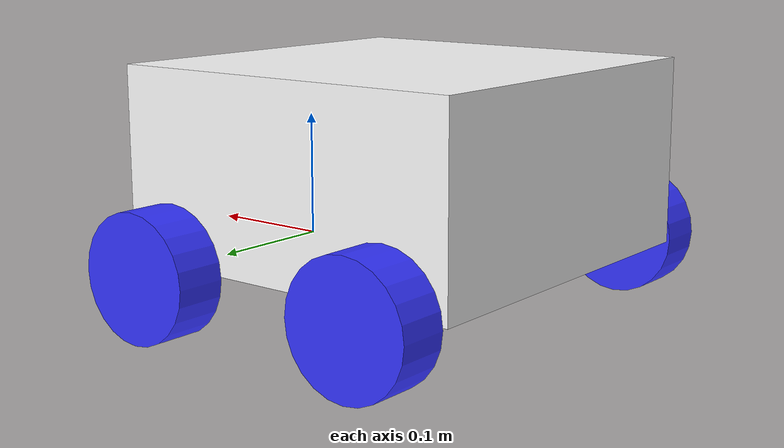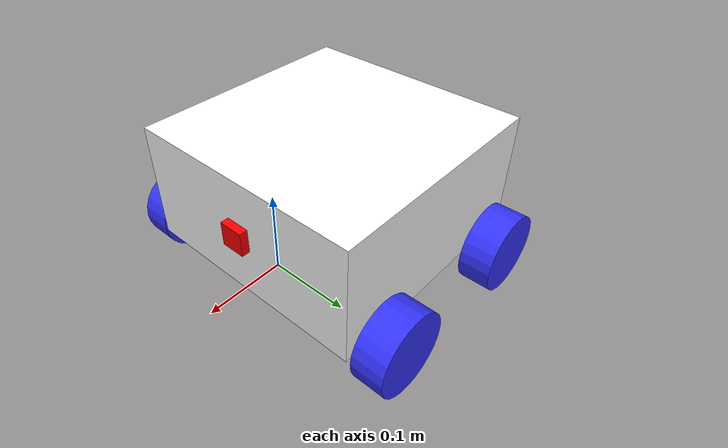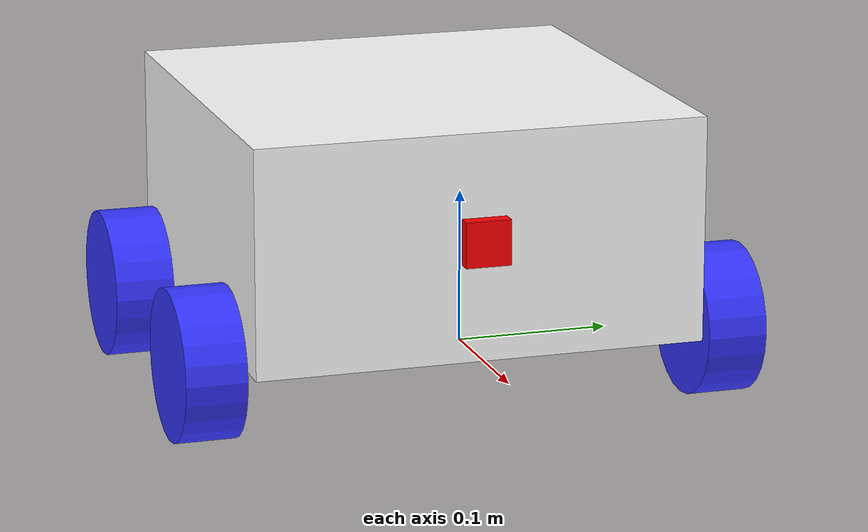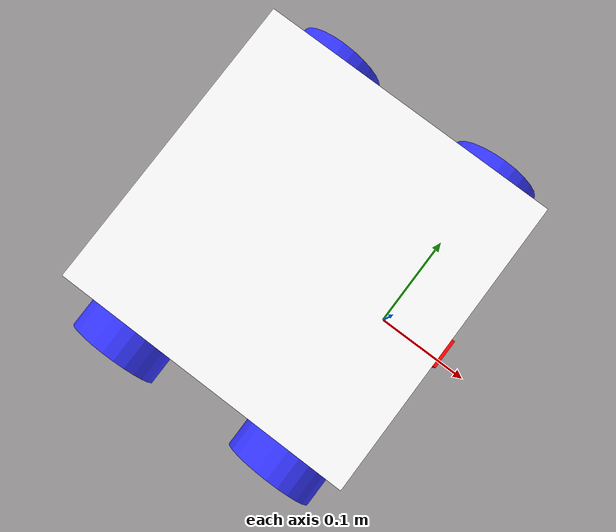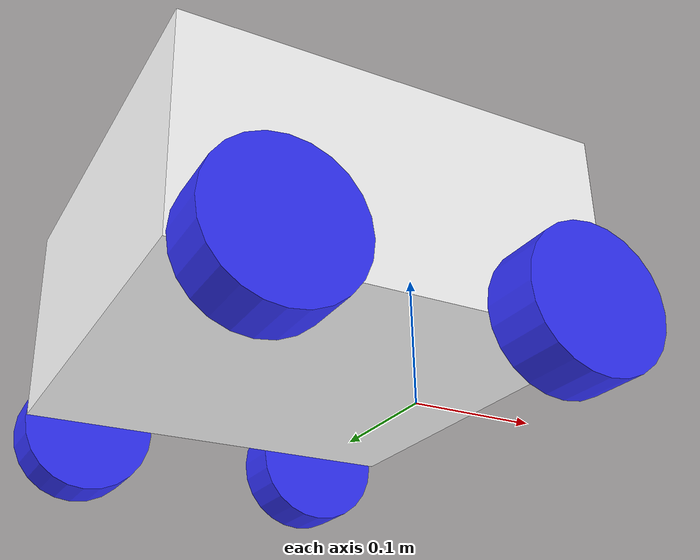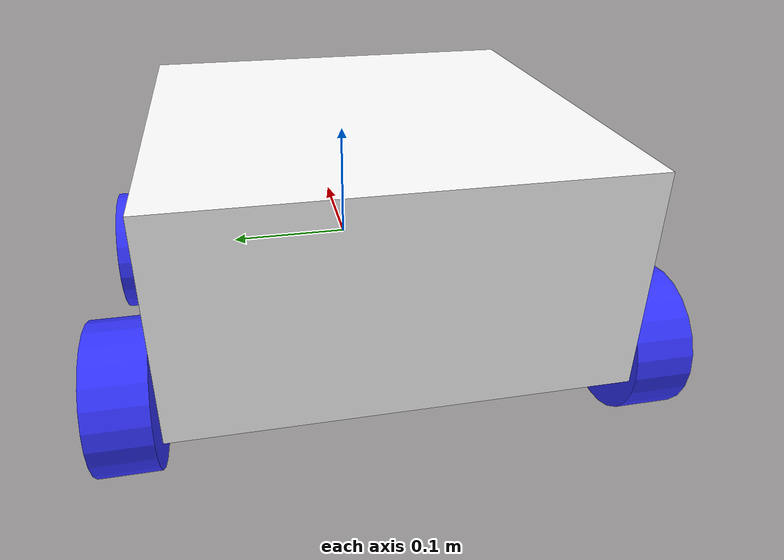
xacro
<?xml version="1.0"?>
<robot xmlns:xacro="http://www.ros.org/wiki/xacro"  name="robot">

   <xacro:include filename="robot_core.xacro"/>

   <xacro:include filename="ros2_control.xacro"/>
   <xacro:include filename="camera.xacro"/>

</robot>

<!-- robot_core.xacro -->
<robot xmlns:xacro="http://www.ros.org/wiki/xacro" >

    <xacro:include filename="inertial_macros.xacro"/>

    <material name="white">
        <color rgba="1 1 1 1" />
    </material>

    <material name="orange">
        <color rgba="1 0.3 0.1 1" />
    </material>

    <material name="blue">
        <color rgba="0.2 0.2 1 1" />
    </material>

    <material name="black">
        <color rgba="0 0 0 1" />
    </material>

    <material name="red">
        <color rgba="1 0 0 1" />
    </material>

    <!--BASE LINK-->

   <link name="base_link">

   </link>

    <!--CHASSIS LINK-->

    <joint name="chassis_joint" type="fixed" >
        <parent link="base_link" />
        <child link="chassis" />
        <origin xyz="-0.25 0 0" />
    </joint>

    <link name="chassis">
        <visual>
            <origin xyz="0.15 0 0.075"/>
            <geometry>
                <box size="0.3 0.3 0.15"/>
            </geometry>
            <material name ="white"/>
        </visual>
        <collision>
            <origin xyz="0.15 0 0.075"/>
            <geometry>
                <box size="0.3 0.3 0.15"/>
            </geometry>
        </collision>
        <xacro:inertial_box mass="0.5" x="0.3" y="0.3" z="0.15">
            <origin xyz="0.15 0 0.075" rpy="0 0 0"/>
        </xacro:inertial_box>
    </link>

    <gazebo reference="chassis">
        <material>Gazebo/white</material>
    </gazebo>

    <!--LEFT WHEEL FRONT LINK-->

    <joint name="left_wheel_joint_front" type="continuous">
        <parent link="base_link"/>
        <child link="left_wheel_front"/>
        <origin xyz="0 0.175 0" rpy="-${pi/2} 0 0"/>
        <axis xyz="0 0 1"/>
    </joint>

    <link name="left_wheel_front">
        <visual>
            <geometry>
                <cylinder radius="0.05" length="0.04"/>
            </geometry>
            <material name="blue"/>
        </visual>
        <collision>
            <geometry>
                <cylinder radius="0.05" length="0.04"/>
            </geometry>
        </collision>
        <xacro:inertial_cylinder mass="0.1" length="0.04" radius="0.05">
            <origin xyz="0 0 0" rpy="0 0 0"/>
        </xacro:inertial_cylinder>
    </link>

    <gazebo reference="left_wheel_front">
        <material>Gazebo/Blue</material>
    </gazebo>

    <!--RIGHT WHEEL FRONT LINK-->

    <joint name="right_wheel_joint_front" type="continuous">
        <parent link="base_link"/>
        <child link="right_wheel_front"/>
        <origin xyz="0 -0.175 0" rpy="${pi/2} 0 0"/>
        <axis xyz="0 0 -1"/>
    </joint>

    <link name="right_wheel_front">
        <visual>
            <geometry>
                <cylinder radius="0.05" length="0.04"/>
            </geometry>
            <material name="blue"/>
        </visual>
        <collision>
            <geometry>
                <cylinder radius="0.05" length="0.04"/>
            </geometry>
        </collision>
        <xacro:inertial_cylinder mass="0.1" length="0.04" radius="0.05">
            <origin xyz="0 0 0" rpy="0 0 0"/>
        </xacro:inertial_cylinder>
    </link>

    <gazebo reference="right_wheel_front">
        <material>Gazebo/Blue</material>
    </gazebo>

    <!--LEFT WHEEL BACK LINK-->

    <joint name="left_wheel_joint_back" type="fixed">
        <parent link="chassis"/>
        <child link="left_wheel_back"/>
        <origin xyz="0.05 0.175 0" rpy="-${pi/2} 0 0"/>
    </joint>

    <link name="left_wheel_back">
        <visual>
            <geometry>
                <cylinder radius="0.05" length="0.04"/>
            </geometry>
            <material name="blue"/>
        </visual>
        <collision>
            <geometry>
                <cylinder radius="0.05" length="0.04"/>
            </geometry>
        </collision>
        <xacro:inertial_cylinder mass="0.1" length="0.04" radius="0.05">
            <origin xyz="0 0 0" rpy="0 0 0"/>
        </xacro:inertial_cylinder>
    </link>

    <gazebo reference="left_wheel_back">
        <material>Gazebo/Blue</material>
        <mu1 value="0.001"/>
        <mu2 value="0.001"/>
    </gazebo>

    <!--RIGHT WHEEL BACK LINK-->

    <joint name="right_wheel_joint_back" type="fixed">
        <parent link="chassis"/>
        <child link="right_wheel_back"/>
        <origin xyz="0.05 -0.175 0" rpy="${pi/2} 0 0"/>
    </joint>

    <link name="right_wheel_back">
        <visual>
            <geometry>
                <cylinder radius="0.05" length="0.04"/>
            </geometry>
            <material name="blue"/>
        </visual>
        <collision>
            <geometry>
                <cylinder radius="0.05" length="0.04"/>
            </geometry>
        </collision>
        <xacro:inertial_cylinder mass="0.1" length="0.04" radius="0.05">
            <origin xyz="0 0 0" rpy="0 0 0"/>
        </xacro:inertial_cylinder>
    </link>

    <gazebo reference="right_wheel_back">
        <material>Gazebo/Blue</material>
        <mu1 value="0.001"/>
        <mu2 value="0.001"/>
    </gazebo>

</robot>

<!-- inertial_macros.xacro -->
<robot xmlns:xacro="http://www.ros.org/wiki/xacro" >

    <xacro:macro name="inertial_box" params="mass x y z *origin">
        <inertial>
            <xacro:insert_block name="origin"/>
            <mass value="${mass}" />
            <inertia ixx="${(1/12) * mass * (y*y+z*z)}" ixy="0.0" ixz="0.0"
                    iyy="${(1/12) * mass * (x*x+z*z)}" iyz="0.0"
                    izz="${(1/12) * mass * (x*x+y*y)}" />
        </inertial>
    </xacro:macro>

    <xacro:macro name="inertial_cylinder" params="mass length radius *origin">
        <inertial>
            <xacro:insert_block name="origin"/>
            <mass value="${mass}" />
            <inertia ixx="${(1/12) * mass * (3*radius*radius + length*length)}" ixy="0.0" ixz="0.0"
                    iyy="${(1/12) * mass * (3*radius*radius + length*length)}" iyz="0.0"
                    izz="${(1/2) * mass * (radius*radius)}" />
        </inertial>
    </xacro:macro>

</robot>

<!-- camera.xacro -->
<robot xmlns:xacro="http://www.ros.org/wiki/xacro" >

    <joint name="camera_joint" type="fixed">
        <parent link="chassis"/>
        <child link="camera_link"/>
        <origin xyz="0.305 0 0.08" rpy="0 0 0"/>
    </joint>

    <link name="camera_link">
        <visual>
            <geometry>
                <box size="0.010 0.03 0.03"/>
            </geometry>
        <material name="red"/>
        </visual>
    </link>

    <joint name="camera_optical_joint" type="fixed">
        <parent link="camera_link"/>
        <child link="camera_link_optical"/>
        <origin xyz="0 0 0" rpy="${-pi/2} 0 ${-pi/2}"/>
    </joint>

    <link name="camera_link_optical"></link>

    <gazebo reference="camera_link">
        <material>Gazebo/Red</material>

        <sensor name="camera" type="camera">
            <pose> 0 0 0 0 0 0 </pose>
            <visualize>true</visualize>
            <update_rate>10</update_rate>
            <camera>
                <horizontal_fov>1.089</horizontal_fov>
                <image>
                    <format>R8G8B8</format>
                    <width>640</width>
                    <height>480</height>
                </image>
                <clip>
                    <near>0.05</near>
                    <far>8.0</far>
                </clip>
            </camera>
            <plugin name="camera_controller" filename="libgazebo_ros_camera.so">
                <frame_name>camera_link_optical</frame_name>
            </plugin>
        </sensor>
    </gazebo>

</robot>
